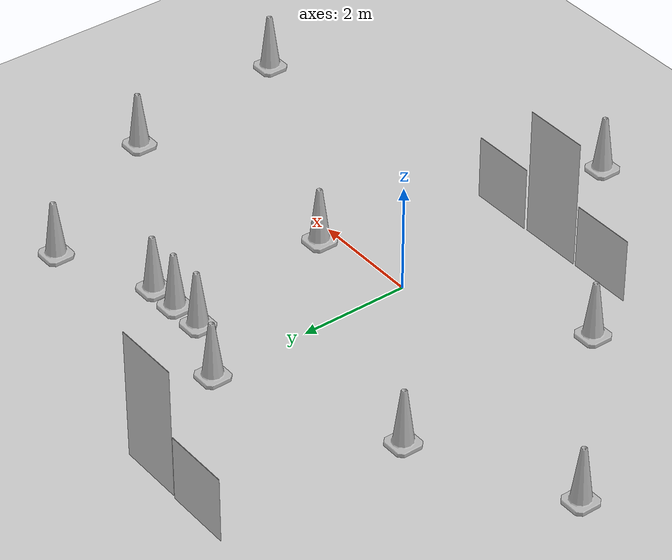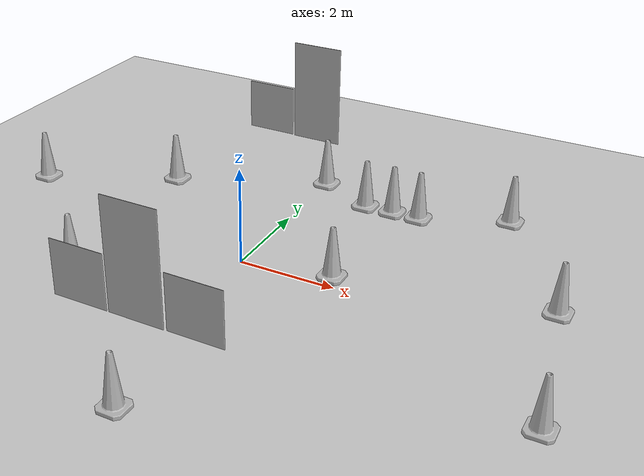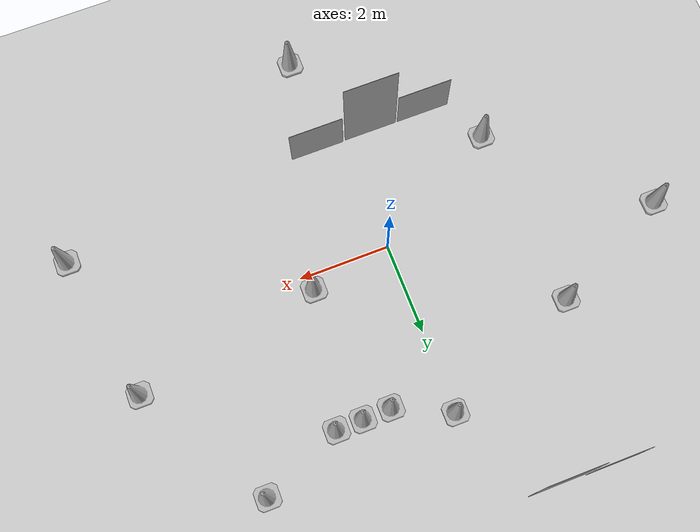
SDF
<sdf version="1.7">
 <world name="default">
  <light name="sun" type="directional">
   <pose>0 0 10 0 -0 0</pose>
   <diffuse>0.8 0.8 0.8 1</diffuse>
   <specular>0.2 0.2 0.2 1</specular>
   <attenuation>
    <range>1000</range>
    <constant>0.9</constant>
    <linear>0.01</linear>
    <quadratic>0.001</quadratic>
   </attenuation>
   <direction>-0.5 0.1 -0.9</direction>
   <spot><inner_angle>0</inner_angle><outer_angle>0</outer_angle><falloff>0</falloff></spot>
  </light>
  <model name="ground_plane">
   <static>1</static>
   <link name="link">
    <collision name="collision">
     <geometry><plane><normal>0 0 1</normal><size>100 100</size></plane></geometry>
     <surface><friction><ode><mu>100</mu><mu2>50</mu2></ode></friction></surface>
    </collision>
    <visual name="visual">
     <cast_shadows>0</cast_shadows>
     <geometry><plane><normal>0 0 1</normal><size>100 100</size></plane></geometry>
     <material>
      <script><uri>file://media/materials/scripts/gazebo.material</uri><name>Gazebo/Grey</name></script>
     </material>
    </visual>
   </link>
  </model>
  <gravity>0 0 -9.8</gravity>
  <magnetic_field>6e-06 2.3e-05 -4.2e-05</magnetic_field>
  <atmosphere type="adiabatic"/>
  <physics type="ode">
   <max_step_size>0.001</max_step_size>
   <real_time_factor>1</real_time_factor>
   <real_time_update_rate>1000</real_time_update_rate>
  </physics>
  <scene><ambient>0.4 0.4 0.4 1</ambient><background>0.7 0.7 0.7 1</background><shadows>1</shadows></scene>
  <audio><device>default</device></audio>
  <spherical_coordinates>
   <surface_model>EARTH_WGS84</surface_model>
   <latitude_deg>0</latitude_deg>
   <longitude_deg>0</longitude_deg>
   <elevation>0</elevation>
   <heading_deg>0</heading_deg>
  </spherical_coordinates>
  <model name="Construction Cone">
   <link name="link">
    <collision name="collision">
     <geometry>
      <mesh><scale>10 10 10</scale><uri>model://construction_cone/meshes/construction_cone.dae</uri></mesh>
     </geometry>
    </collision>
    <visual name="visual">
     <geometry>
      <mesh><scale>10 10 10</scale><uri>model://construction_cone/meshes/construction_cone.dae</uri></mesh>
     </geometry>
    </visual>
    <inertial>
     <inertia><ixx>1</ixx><ixy>0</ixy><ixz>0</ixz><iyy>1</iyy><iyz>0</iyz><izz>1</izz></inertia>
     <mass>1</mass>
    </inertial>
   </link>
   <pose>-2.85442 -1.63534 -1e-05 0 1e-06 0</pose>
  </model>
  <model name="Construction Cone_0">
   <link name="link">
    <collision name="collision">
     <geometry>
      <mesh><scale>10 10 10</scale><uri>model://construction_cone/meshes/construction_cone.dae</uri></mesh>
     </geometry>
    </collision>
    <visual name="visual">
     <geometry>
      <mesh><scale>10 10 10</scale><uri>model://construction_cone/meshes/construction_cone.dae</uri></mesh>
     </geometry>
    </visual>
    <inertial>
     <inertia><ixx>1</ixx><ixy>0</ixy><ixz>0</ixz><iyy>1</iyy><iyz>0</iyz><izz>1</izz></inertia>
     <mass>1</mass>
    </inertial>
   </link>
   <pose>1.20259 3.24149 -0 0 -0 0</pose>
  </model>
  <model name="Construction Cone_1">
   <link name="link">
    <collision name="collision">
     <geometry>
      <mesh><scale>10 10 10</scale><uri>model://construction_cone/meshes/construction_cone.dae</uri></mesh>
     </geometry>
    </collision>
    <visual name="visual">
     <geometry>
      <mesh><scale>10 10 10</scale><uri>model://construction_cone/meshes/construction_cone.dae</uri></mesh>
     </geometry>
    </visual>
    <inertial>
     <inertia><ixx>1</ixx><ixy>0</ixy><ixz>0</ixz><iyy>1</iyy><iyz>0</iyz><izz>1</izz></inertia>
     <mass>1</mass>
    </inertial>
   </link>
   <pose>-5.73319 1.12848 -0 0 -1e-06 0</pose>
  </model>
  <model name="Construction Cone_2">
   <link name="link">
    <collision name="collision">
     <geometry>
      <mesh><scale>10 10 10</scale><uri>model://construction_cone/meshes/construction_cone.dae</uri></mesh>
     </geometry>
    </collision>
    <visual name="visual">
     <geometry>
      <mesh><scale>10 10 10</scale><uri>model://construction_cone/meshes/construction_cone.dae</uri></mesh>
     </geometry>
    </visual>
    <inertial>
     <inertia><ixx>1</ixx><ixy>0</ixy><ixz>0</ixz><iyy>1</iyy><iyz>0</iyz><izz>1</izz></inertia>
     <mass>1</mass>
    </inertial>
   </link>
   <pose>6.50145 -2.10735 -0 0 -0 0</pose>
  </model>
  <model name="Construction Cone_3">
   <link name="link">
    <collision name="collision">
     <geometry>
      <mesh><scale>10 10 10</scale><uri>model://construction_cone/meshes/construction_cone.dae</uri></mesh>
     </geometry>
    </collision>
    <visual name="visual">
     <geometry>
      <mesh><scale>10 10 10</scale><uri>model://construction_cone/meshes/construction_cone.dae</uri></mesh>
     </geometry>
    </visual>
    <inertial>
     <inertia><ixx>1</ixx><ixy>0</ixy><ixz>0</ixz><iyy>1</iyy><iyz>0</iyz><izz>1</izz></inertia>
     <mass>1</mass>
    </inertial>
   </link>
   <pose>0.488376 -4.77485 -0 0 -1e-06 0</pose>
  </model>
  <model name="Construction Cone_4">
   <link name="link">
    <collision name="collision">
     <geometry>
      <mesh><scale>10 10 10</scale><uri>model://construction_cone/meshes/construction_cone.dae</uri></mesh>
     </geometry>
    </collision>
    <visual name="visual">
     <geometry>
      <mesh><scale>10 10 10</scale><uri>model://construction_cone/meshes/construction_cone.dae</uri></mesh>
     </geometry>
    </visual>
    <inertial>
     <inertia><ixx>1</ixx><ixy>0</ixy><ixz>0</ixz><iyy>1</iyy><iyz>0</iyz><izz>1</izz></inertia>
     <mass>1</mass>
    </inertial>
   </link>
   <pose>1.82006 3.2564 -1e-06 2e-06 2e-06 0</pose>
  </model>
  <model name="Construction Cone_5">
   <link name="link">
    <collision name="collision">
     <geometry>
      <mesh><scale>10 10 10</scale><uri>model://construction_cone/meshes/construction_cone.dae</uri></mesh>
     </geometry>
    </collision>
    <visual name="visual">
     <geometry>
      <mesh><scale>10 10 10</scale><uri>model://construction_cone/meshes/construction_cone.dae</uri></mesh>
     </geometry>
    </visual>
    <inertial>
     <inertia><ixx>1</ixx><ixy>0</ixy><ixz>0</ixz><iyy>1</iyy><iyz>0</iyz><izz>1</izz></inertia>
     <mass>1</mass>
    </inertial>
   </link>
   <pose>2.40448 3.26903 -0 0 -0 0</pose>
  </model>
  <model name="Construction Cone_6">
   <link name="link">
    <collision name="collision">
     <geometry>
      <mesh><scale>10 10 10</scale><uri>model://construction_cone/meshes/construction_cone.dae</uri></mesh>
     </geometry>
    </collision>
    <visual name="visual">
     <geometry>
      <mesh><scale>10 10 10</scale><uri>model://construction_cone/meshes/construction_cone.dae</uri></mesh>
     </geometry>
    </visual>
    <inertial>
     <inertia><ixx>1</ixx><ixy>0</ixy><ixz>0</ixz><iyy>1</iyy><iyz>0</iyz><izz>1</izz></inertia>
     <mass>1</mass>
    </inertial>
   </link>
   <pose>4.15799 4.02639 -0 0 -0 0</pose>
  </model>
  <model name="Construction Cone_7">
   <link name="link">
    <collision name="collision">
     <geometry>
      <mesh><scale>10 10 10</scale><uri>model://construction_cone/meshes/construction_cone.dae</uri></mesh>
     </geometry>
    </collision>
    <visual name="visual">
     <geometry>
      <mesh><scale>10 10 10</scale><uri>model://construction_cone/meshes/construction_cone.dae</uri></mesh>
     </geometry>
    </visual>
    <inertial>
     <inertia><ixx>1</ixx><ixy>0</ixy><ixz>0</ixz><iyy>1</iyy><iyz>0</iyz><izz>1</izz></inertia>
     <mass>1</mass>
    </inertial>
   </link>
   <pose>1.8043 0.331698 -0 0 -0 0</pose>
  </model>
  <model name="Construction Cone_8">
   <link name="link">
    <collision name="collision">
     <geometry>
      <mesh><scale>10 10 10</scale><uri>model://construction_cone/meshes/construction_cone.dae</uri></mesh>
     </geometry>
    </collision>
    <visual name="visual">
     <geometry>
      <mesh><scale>10 10 10</scale><uri>model://construction_cone/meshes/construction_cone.dae</uri></mesh>
     </geometry>
    </visual>
    <inertial>
     <inertia><ixx>1</ixx><ixy>0</ixy><ixz>0</ixz><iyy>1</iyy><iyz>0</iyz><izz>1</izz></inertia>
     <mass>1</mass>
    </inertial>
   </link>
   <pose>0.008298 3.80075 -0 0 -0 0</pose>
  </model>
  <model name="Construction Cone_9">
   <link name="link">
    <collision name="collision">
     <geometry>
      <mesh><scale>10 10 10</scale><uri>model://construction_cone/meshes/construction_cone.dae</uri></mesh>
     </geometry>
    </collision>
    <visual name="visual">
     <geometry>
      <mesh><scale>10 10 10</scale><uri>model://construction_cone/meshes/construction_cone.dae</uri></mesh>
     </geometry>
    </visual>
    <inertial>
     <inertia><ixx>1</ixx><ixy>0</ixy><ixz>0</ixz><iyy>1</iyy><iyz>0</iyz><izz>1</izz></inertia>
     <mass>1</mass>
    </inertial>
   </link>
   <pose>5.91562 1.14803 -0 0 -0 0</pose>
  </model>
  <model name="Construction Cone_10">
   <link name="link">
    <collision name="collision">
     <geometry>
      <mesh><scale>10 10 10</scale><uri>model://construction_cone/meshes/construction_cone.dae</uri></mesh>
     </geometry>
    </collision>
    <visual name="visual">
     <geometry>
      <mesh><scale>10 10 10</scale><uri>model://construction_cone/meshes/construction_cone.dae</uri></mesh>
     </geometry>
    </visual>
    <inertial>
     <inertia><ixx>1</ixx><ixy>0</ixy><ixz>0</ixz><iyy>1</iyy><iyz>0</iyz><izz>1</izz></inertia>
     <mass>1</mass>
    </inertial>
   </link>
   <pose>-3.08097 2.42239 -0 0 -0 0</pose>
  </model>
  <model name="nist_maze_wall_120">
   <static>1</static>
   <link name="nist_maze_wall_120_link">
    <collision name="collision">
     <geometry>
      <mesh><uri>model://nist_maze_wall_120/meshes/nist_maze_wall_120.dae</uri><scale>1 1 1</scale></mesh>
     </geometry>
    </collision>
    <visual name="visual">
     <geometry>
      <mesh><uri>model://nist_maze_wall_120/meshes/nist_maze_wall_120.dae</uri><scale>1 1 1</scale></mesh>
     </geometry>
    </visual>
   </link>
   <pose>-1.85793 -3.2433 0 0 -0 0</pose>
  </model>
  <model name="nist_maze_wall_240">
   <static>1</static>
   <link name="nist__maze_wall_240_link">
    <collision name="collision">
     <geometry>
      <mesh><uri>model://nist_maze_wall_240/meshes/nist_maze_wall_240.dae</uri><scale>1 1 1</scale></mesh>
     </geometry>
    </collision>
    <visual name="visual">
     <geometry>
      <mesh><uri>model://nist_maze_wall_240/meshes/nist_maze_wall_240.dae</uri><scale>1 1 1</scale></mesh>
     </geometry>
    </visual>
   </link>
   <pose>-0.622782 -3.24344 0 0 -0 0</pose>
  </model>
  <model name="nist_maze_wall_120_0">
   <static>1</static>
   <link name="nist_maze_wall_120_link">
    <collision name="collision">
     <geometry>
      <mesh><uri>model://nist_maze_wall_120/meshes/nist_maze_wall_120.dae</uri><scale>1 1 1</scale></mesh>
     </geometry>
    </collision>
    <visual name="visual">
     <geometry>
      <mesh><uri>model://nist_maze_wall_120/meshes/nist_maze_wall_120.dae</uri><scale>1 1 1</scale></mesh>
     </geometry>
    </visual>
   </link>
   <pose>0.622839 -3.22881 0 0 -0 0</pose>
  </model>
  <model name="nist_maze_wall_240_0">
   <static>1</static>
   <link name="nist__maze_wall_240_link">
    <collision name="collision">
     <geometry>
      <mesh><uri>model://nist_maze_wall_240/meshes/nist_maze_wall_240.dae</uri><scale>1 1 1</scale></mesh>
     </geometry>
    </collision>
    <visual name="visual">
     <geometry>
      <mesh><uri>model://nist_maze_wall_240/meshes/nist_maze_wall_240.dae</uri><scale>1 1 1</scale></mesh>
     </geometry>
    </visual>
   </link>
   <pose>-1.30077 5.28113 0 0 -0 0</pose>
  </model>
  <model name="nist_maze_wall_120_1">
   <static>1</static>
   <link name="nist_maze_wall_120_link">
    <collision name="collision">
     <geometry>
      <mesh><uri>model://nist_maze_wall_120/meshes/nist_maze_wall_120.dae</uri><scale>1 1 1</scale></mesh>
     </geometry>
    </collision>
    <visual name="visual">
     <geometry>
      <mesh><uri>model://nist_maze_wall_120/meshes/nist_maze_wall_120.dae</uri><scale>1 1 1</scale></mesh>
     </geometry>
    </visual>
   </link>
   <pose>-2.54499 5.3052 0 0 -0 0</pose>
  </model>
 </world>
</sdf>
